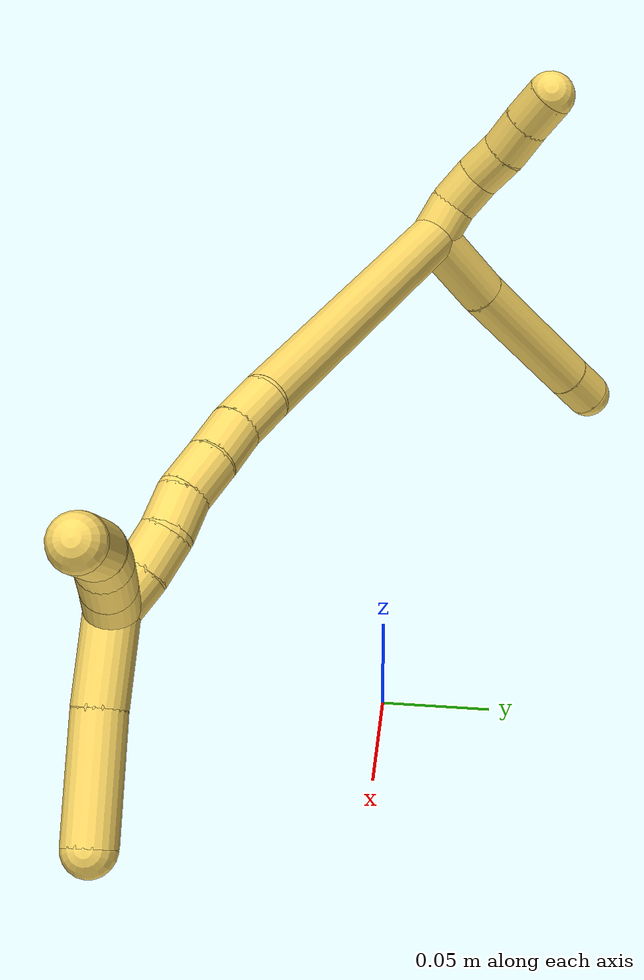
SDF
<sdf version="1.7">
 <world name="default">
  <model name="5">
   <static>0</static>
   <link name="5">
    <collision name="collision-cylinder-e_1_2_8">
     <pose>-0.000917 -0.016571 0.016247 0.795261 -0.039487 -0.016587</pose>
     <geometry><cylinder><radius>0.0125</radius><length>0.046451</length></cylinder></geometry>
     <surface>
      <friction><ode><mu>1.16</mu><mu2>1.16</mu2><slip1>0</slip1><slip2>0</slip2></ode></friction>
      <contact><ode><kp>1e+06</kp><kd>1</kd><max_vel>0</max_vel><min_depth>0.001</min_depth></ode></contact>
     </surface>
    </collision>
    <visual name="visual-cylinder-e_1_2_8">
     <pose>-0.000917 -0.016571 0.016247 0.795261 -0.039487 -0.016587</pose>
     <geometry><cylinder><radius>0.0125</radius><length>0.046451</length></cylinder></geometry>
     <material><ambient>1 0.858824 0.4 1</ambient></material>
    </visual>
    <collision name="collision-cylinder-e_2_8_9">
     <pose>-0.006207 -0.061881 0.061323 0.783852 -0.107034 -0.044273</pose>
     <geometry><cylinder><radius>0.0125</radius><length>0.08188</length></cylinder></geometry>
     <surface>
      <friction><ode><mu>1.16</mu><mu2>1.16</mu2><slip1>0</slip1><slip2>0</slip2></ode></friction>
      <contact><ode><kp>1e+06</kp><kd>1</kd><max_vel>0</max_vel><min_depth>0.001</min_depth></ode></contact>
     </surface>
    </collision>
    <visual name="visual-cylinder-e_2_8_9">
     <pose>-0.006207 -0.061881 0.061323 0.783852 -0.107034 -0.044273</pose>
     <geometry><cylinder><radius>0.0125</radius><length>0.08188</length></cylinder></geometry>
     <material><ambient>1 0.858824 0.4 1</ambient></material>
    </visual>
    <collision name="collision-cylinder-e_3_9_6">
     <pose>-0.011896 -0.097846 0.098115 0.736818 -0.121718 -0.047037</pose>
     <geometry><cylinder><radius>0.0125</radius><length>0.021669</length></cylinder></geometry>
     <surface>
      <friction><ode><mu>1.16</mu><mu2>1.16</mu2><slip1>0</slip1><slip2>0</slip2></ode></friction>
      <contact><ode><kp>1e+06</kp><kd>1</kd><max_vel>0</max_vel><min_depth>0.001</min_depth></ode></contact>
     </surface>
    </collision>
    <visual name="visual-cylinder-e_3_9_6">
     <pose>-0.011896 -0.097846 0.098115 0.736818 -0.121718 -0.047037</pose>
     <geometry><cylinder><radius>0.0125</radius><length>0.021669</length></cylinder></geometry>
     <material><ambient>1 0.858824 0.4 1</ambient></material>
    </visual>
    <collision name="collision-cylinder-e_1_2_10">
     <pose>-0.009677 0.001772 -0.001795 -2.36261 -1.31576 2.16502</pose>
     <geometry><cylinder><radius>0.0125</radius><length>0.02</length></cylinder></geometry>
     <surface>
      <friction><ode><mu>1.16</mu><mu2>1.16</mu2><slip1>0</slip1><slip2>0</slip2></ode></friction>
      <contact><ode><kp>1e+06</kp><kd>1</kd><max_vel>0</max_vel><min_depth>0.001</min_depth></ode></contact>
     </surface>
    </collision>
    <visual name="visual-cylinder-e_1_2_10">
     <pose>-0.009677 0.001772 -0.001795 -2.36261 -1.31576 2.16502</pose>
     <geometry><cylinder><radius>0.0125</radius><length>0.02</length></cylinder></geometry>
     <material><ambient>1 0.858824 0.4 1</ambient></material>
    </visual>
    <collision name="collision-cylinder-e_2_10_11">
     <pose>-0.02847 0.00289 -0.007647 2.98154 -1.14734 -2.89463</pose>
     <geometry><cylinder><radius>0.0125</radius><length>0.02</length></cylinder></geometry>
     <surface>
      <friction><ode><mu>1.16</mu><mu2>1.16</mu2><slip1>0</slip1><slip2>0</slip2></ode></friction>
      <contact><ode><kp>1e+06</kp><kd>1</kd><max_vel>0</max_vel><min_depth>0.001</min_depth></ode></contact>
     </surface>
    </collision>
    <visual name="visual-cylinder-e_2_10_11">
     <pose>-0.02847 0.00289 -0.007647 2.98154 -1.14734 -2.89463</pose>
     <geometry><cylinder><radius>0.0125</radius><length>0.02</length></cylinder></geometry>
     <material><ambient>1 0.858824 0.4 1</ambient></material>
    </visual>
    <collision name="collision-cylinder-e_3_11_12">
     <pose>-0.0455 0.000285 -0.017499 2.81702 -0.912981 -2.49798</pose>
     <geometry><cylinder><radius>0.0125</radius><length>0.02</length></cylinder></geometry>
     <surface>
      <friction><ode><mu>1.16</mu><mu2>1.16</mu2><slip1>0</slip1><slip2>0</slip2></ode></friction>
      <contact><ode><kp>1e+06</kp><kd>1</kd><max_vel>0</max_vel><min_depth>0.001</min_depth></ode></contact>
     </surface>
    </collision>
    <visual name="visual-cylinder-e_3_11_12">
     <pose>-0.0455 0.000285 -0.017499 2.81702 -0.912981 -2.49798</pose>
     <geometry><cylinder><radius>0.0125</radius><length>0.02</length></cylinder></geometry>
     <material><ambient>1 0.858824 0.4 1</ambient></material>
    </visual>
    <collision name="collision-cylinder-e_4_12_13">
     <pose>-0.061035 -0.002352 -0.02973 3.03514 -0.866731 -2.91232</pose>
     <geometry><cylinder><radius>0.0125</radius><length>0.02</length></cylinder></geometry>
     <surface>
      <friction><ode><mu>1.16</mu><mu2>1.16</mu2><slip1>0</slip1><slip2>0</slip2></ode></friction>
      <contact><ode><kp>1e+06</kp><kd>1</kd><max_vel>0</max_vel><min_depth>0.001</min_depth></ode></contact>
     </surface>
    </collision>
    <visual name="visual-cylinder-e_4_12_13">
     <pose>-0.061035 -0.002352 -0.02973 3.03514 -0.866731 -2.91232</pose>
     <geometry><cylinder><radius>0.0125</radius><length>0.02</length></cylinder></geometry>
     <material><ambient>1 0.858824 0.4 1</ambient></material>
    </visual>
    <collision name="collision-cylinder-e_5_13_5">
     <pose>-0.076144 -0.004249 -0.042685 2.95818 -0.845956 -2.73855</pose>
     <geometry><cylinder><radius>0.0125</radius><length>0.02</length></cylinder></geometry>
     <surface>
      <friction><ode><mu>1.16</mu><mu2>1.16</mu2><slip1>0</slip1><slip2>0</slip2></ode></friction>
      <contact><ode><kp>1e+06</kp><kd>1</kd><max_vel>0</max_vel><min_depth>0.001</min_depth></ode></contact>
     </surface>
    </collision>
    <visual name="visual-cylinder-e_5_13_5">
     <pose>-0.076144 -0.004249 -0.042685 2.95818 -0.845956 -2.73855</pose>
     <geometry><cylinder><radius>0.0125</radius><length>0.02</length></cylinder></geometry>
     <material><ambient>1 0.858824 0.4 1</ambient></material>
    </visual>
    <collision name="collision-cylinder-e_1_2_14">
     <pose>0.066803 -0.008686 -0.053138 2.97956 0.892403 2.80535</pose>
     <geometry><cylinder><radius>0.0125</radius><length>0.171601</length></cylinder></geometry>
     <surface>
      <friction><ode><mu>1.16</mu><mu2>1.16</mu2><slip1>0</slip1><slip2>0</slip2></ode></friction>
      <contact><ode><kp>1e+06</kp><kd>1</kd><max_vel>0</max_vel><min_depth>0.001</min_depth></ode></contact>
     </surface>
    </collision>
    <visual name="visual-cylinder-e_1_2_14">
     <pose>0.066803 -0.008686 -0.053138 2.97956 0.892403 2.80535</pose>
     <geometry><cylinder><radius>0.0125</radius><length>0.171601</length></cylinder></geometry>
     <material><ambient>1 0.858824 0.4 1</ambient></material>
    </visual>
    <collision name="collision-cylinder-e_2_14_15">
     <pose>0.143893 -0.018405 -0.111814 2.95724 1.06982 2.83208</pose>
     <geometry><cylinder><radius>0.0125</radius><length>0.023457</length></cylinder></geometry>
     <surface>
      <friction><ode><mu>1.16</mu><mu2>1.16</mu2><slip1>0</slip1><slip2>0</slip2></ode></friction>
      <contact><ode><kp>1e+06</kp><kd>1</kd><max_vel>0</max_vel><min_depth>0.001</min_depth></ode></contact>
     </surface>
    </collision>
    <visual name="visual-cylinder-e_2_14_15">
     <pose>0.143893 -0.018405 -0.111814 2.95724 1.06982 2.83208</pose>
     <geometry><cylinder><radius>0.0125</radius><length>0.023457</length></cylinder></geometry>
     <material><ambient>1 0.858824 0.4 1</ambient></material>
    </visual>
    <collision name="collision-cylinder-e_3_15_16">
     <pose>0.163524 -0.021741 -0.122769 2.73951 1.00859 2.43414</pose>
     <geometry><cylinder><radius>0.0125</radius><length>0.022088</length></cylinder></geometry>
     <surface>
      <friction><ode><mu>1.16</mu><mu2>1.16</mu2><slip1>0</slip1><slip2>0</slip2></ode></friction>
      <contact><ode><kp>1e+06</kp><kd>1</kd><max_vel>0</max_vel><min_depth>0.001</min_depth></ode></contact>
     </surface>
    </collision>
    <visual name="visual-cylinder-e_3_15_16">
     <pose>0.163524 -0.021741 -0.122769 2.73951 1.00859 2.43414</pose>
     <geometry><cylinder><radius>0.0125</radius><length>0.022088</length></cylinder></geometry>
     <material><ambient>1 0.858824 0.4 1</ambient></material>
    </visual>
    <collision name="collision-cylinder-e_4_16_17">
     <pose>0.182974 -0.02593 -0.132902 2.7613 1.1052 2.53654</pose>
     <geometry><cylinder><radius>0.0125</radius><length>0.02262</length></cylinder></geometry>
     <surface>
      <friction><ode><mu>1.16</mu><mu2>1.16</mu2><slip1>0</slip1><slip2>0</slip2></ode></friction>
      <contact><ode><kp>1e+06</kp><kd>1</kd><max_vel>0</max_vel><min_depth>0.001</min_depth></ode></contact>
     </surface>
    </collision>
    <visual name="visual-cylinder-e_4_16_17">
     <pose>0.182974 -0.02593 -0.132902 2.7613 1.1052 2.53654</pose>
     <geometry><cylinder><radius>0.0125</radius><length>0.02262</length></cylinder></geometry>
     <material><ambient>1 0.858824 0.4 1</ambient></material>
    </visual>
    <collision name="collision-cylinder-e_5_17_18">
     <pose>0.20177 -0.03162 -0.14088 2.27978 1.04756 1.79708</pose>
     <geometry><cylinder><radius>0.0125</radius><length>0.020064</length></cylinder></geometry>
     <surface>
      <friction><ode><mu>1.16</mu><mu2>1.16</mu2><slip1>0</slip1><slip2>0</slip2></ode></friction>
      <contact><ode><kp>1e+06</kp><kd>1</kd><max_vel>0</max_vel><min_depth>0.001</min_depth></ode></contact>
     </surface>
    </collision>
    <visual name="visual-cylinder-e_5_17_18">
     <pose>0.20177 -0.03162 -0.14088 2.27978 1.04756 1.79708</pose>
     <geometry><cylinder><radius>0.0125</radius><length>0.020064</length></cylinder></geometry>
     <material><ambient>1 0.858824 0.4 1</ambient></material>
    </visual>
    <collision name="collision-cylinder-e_6_18_19">
     <pose>0.220147 -0.037651 -0.14577 2.20137 1.29353 1.957</pose>
     <geometry><cylinder><radius>0.0125</radius><length>0.020143</length></cylinder></geometry>
     <surface>
      <friction><ode><mu>1.16</mu><mu2>1.16</mu2><slip1>0</slip1><slip2>0</slip2></ode></friction>
      <contact><ode><kp>1e+06</kp><kd>1</kd><max_vel>0</max_vel><min_depth>0.001</min_depth></ode></contact>
     </surface>
    </collision>
    <visual name="visual-cylinder-e_6_18_19">
     <pose>0.220147 -0.037651 -0.14577 2.20137 1.29353 1.957</pose>
     <geometry><cylinder><radius>0.0125</radius><length>0.020143</length></cylinder></geometry>
     <material><ambient>1 0.858824 0.4 1</ambient></material>
    </visual>
    <collision name="collision-cylinder-e_7_19_1">
     <pose>0.239589 -0.040977 -0.149372 2.63442 1.34295 2.51108</pose>
     <geometry><cylinder><radius>0.0125</radius><length>0.020026</length></cylinder></geometry>
     <surface>
      <friction><ode><mu>1.16</mu><mu2>1.16</mu2><slip1>0</slip1><slip2>0</slip2></ode></friction>
      <contact><ode><kp>1e+06</kp><kd>1</kd><max_vel>0</max_vel><min_depth>0.001</min_depth></ode></contact>
     </surface>
    </collision>
    <visual name="visual-cylinder-e_7_19_1">
     <pose>0.239589 -0.040977 -0.149372 2.63442 1.34295 2.51108</pose>
     <geometry><cylinder><radius>0.0125</radius><length>0.020026</length></cylinder></geometry>
     <material><ambient>1 0.858824 0.4 1</ambient></material>
    </visual>
    <collision name="collision-cylinder-e_1_1_20">
     <pose>0.245831 -0.041178 -0.16579 -3.07954 -0.238103 2.63389</pose>
     <geometry><cylinder><radius>0.0125</radius><length>0.029778</length></cylinder></geometry>
     <surface>
      <friction><ode><mu>1.16</mu><mu2>1.16</mu2><slip1>0</slip1><slip2>0</slip2></ode></friction>
      <contact><ode><kp>1e+06</kp><kd>1</kd><max_vel>0</max_vel><min_depth>0.001</min_depth></ode></contact>
     </surface>
    </collision>
    <visual name="visual-cylinder-e_1_1_20">
     <pose>0.245831 -0.041178 -0.16579 -3.07954 -0.238103 2.63389</pose>
     <geometry><cylinder><radius>0.0125</radius><length>0.029778</length></cylinder></geometry>
     <material><ambient>1 0.858824 0.4 1</ambient></material>
    </visual>
    <collision name="collision-cylinder-e_2_20_21">
     <pose>0.239464 -0.039434 -0.193074 -3.07573 -0.218344 2.55766</pose>
     <geometry><cylinder><radius>0.0125</radius><length>0.026366</length></cylinder></geometry>
     <surface>
      <friction><ode><mu>1.16</mu><mu2>1.16</mu2><slip1>0</slip1><slip2>0</slip2></ode></friction>
      <contact><ode><kp>1e+06</kp><kd>1</kd><max_vel>0</max_vel><min_depth>0.001</min_depth></ode></contact>
     </surface>
    </collision>
    <visual name="visual-cylinder-e_2_20_21">
     <pose>0.239464 -0.039434 -0.193074 -3.07573 -0.218344 2.55766</pose>
     <geometry><cylinder><radius>0.0125</radius><length>0.026366</length></cylinder></geometry>
     <material><ambient>1 0.858824 0.4 1</ambient></material>
    </visual>
    <collision name="collision-cylinder-e_3_21_22">
     <pose>0.235386 -0.038145 -0.216282 -3.09902 -0.117296 2.44592</pose>
     <geometry><cylinder><radius>0.0125</radius><length>0.020895</length></cylinder></geometry>
     <surface>
      <friction><ode><mu>1.16</mu><mu2>1.16</mu2><slip1>0</slip1><slip2>0</slip2></ode></friction>
      <contact><ode><kp>1e+06</kp><kd>1</kd><max_vel>0</max_vel><min_depth>0.001</min_depth></ode></contact>
     </surface>
    </collision>
    <visual name="visual-cylinder-e_3_21_22">
     <pose>0.235386 -0.038145 -0.216282 -3.09902 -0.117296 2.44592</pose>
     <geometry><cylinder><radius>0.0125</radius><length>0.020895</length></cylinder></geometry>
     <material><ambient>1 0.858824 0.4 1</ambient></material>
    </visual>
    <collision name="collision-cylinder-e_4_22_4">
     <pose>0.235236 -0.036877 -0.238048 -3.06923 0.093605 -1.82563</pose>
     <geometry><cylinder><radius>0.0125</radius><length>0.022961</length></cylinder></geometry>
     <surface>
      <friction><ode><mu>1.16</mu><mu2>1.16</mu2><slip1>0</slip1><slip2>0</slip2></ode></friction>
      <contact><ode><kp>1e+06</kp><kd>1</kd><max_vel>0</max_vel><min_depth>0.001</min_depth></ode></contact>
     </surface>
    </collision>
    <visual name="visual-cylinder-e_4_22_4">
     <pose>0.235236 -0.036877 -0.238048 -3.06923 0.093605 -1.82563</pose>
     <geometry><cylinder><radius>0.0125</radius><length>0.022961</length></cylinder></geometry>
     <material><ambient>1 0.858824 0.4 1</ambient></material>
    </visual>
    <collision name="collision-cylinder-e_1_1_23">
     <pose>0.266429 -0.054857 -0.151757 1.60272 0.928251 0.954059</pose>
     <geometry><cylinder><radius>0.0125</radius><length>0.042684</length></cylinder></geometry>
     <surface>
      <friction><ode><mu>1.16</mu><mu2>1.16</mu2><slip1>0</slip1><slip2>0</slip2></ode></friction>
      <contact><ode><kp>1e+06</kp><kd>1</kd><max_vel>0</max_vel><min_depth>0.001</min_depth></ode></contact>
     </surface>
    </collision>
    <visual name="visual-cylinder-e_1_1_23">
     <pose>0.266429 -0.054857 -0.151757 1.60272 0.928251 0.954059</pose>
     <geometry><cylinder><radius>0.0125</radius><length>0.042684</length></cylinder></geometry>
     <material><ambient>1 0.858824 0.4 1</ambient></material>
    </visual>
    <collision name="collision-cylinder-e_2_23_3">
     <pose>0.305509 -0.086006 -0.152624 1.59574 0.874922 0.894219</pose>
     <geometry><cylinder><radius>0.0125</radius><length>0.057316</length></cylinder></geometry>
     <surface>
      <friction><ode><mu>1.16</mu><mu2>1.16</mu2><slip1>0</slip1><slip2>0</slip2></ode></friction>
      <contact><ode><kp>1e+06</kp><kd>1</kd><max_vel>0</max_vel><min_depth>0.001</min_depth></ode></contact>
     </surface>
    </collision>
    <visual name="visual-cylinder-e_2_23_3">
     <pose>0.305509 -0.086006 -0.152624 1.59574 0.874922 0.894219</pose>
     <geometry><cylinder><radius>0.0125</radius><length>0.057316</length></cylinder></geometry>
     <material><ambient>1 0.858824 0.4 1</ambient></material>
    </visual>
    <collision name="collision-sphere-3">
     <pose>0.327504 -0.104371 -0.153082 0 -0 0</pose>
     <geometry><sphere><radius>0.0125</radius></sphere></geometry>
     <surface>
      <friction><ode><mu>1.16</mu><mu2>1.16</mu2><slip1>0</slip1><slip2>0</slip2></ode></friction>
      <contact><ode><kp>1e+06</kp><kd>1</kd><max_vel>0</max_vel><min_depth>0.001</min_depth></ode></contact>
     </surface>
    </collision>
    <visual name="visual-sphere-3">
     <pose>0.327504 -0.104371 -0.153082 0 -0 0</pose>
     <geometry><sphere><radius>0.0125</radius></sphere></geometry>
     <material><ambient>1 0.858824 0.4 1</ambient></material>
    </visual>
    <collision name="collision-sphere-23">
     <pose>0.283514 -0.06764 -0.152166 0 -0 0</pose>
     <geometry><sphere><radius>0.0125</radius></sphere></geometry>
     <surface>
      <friction><ode><mu>1.16</mu><mu2>1.16</mu2><slip1>0</slip1><slip2>0</slip2></ode></friction>
      <contact><ode><kp>1e+06</kp><kd>1</kd><max_vel>0</max_vel><min_depth>0.001</min_depth></ode></contact>
     </surface>
    </collision>
    <visual name="visual-sphere-23">
     <pose>0.283514 -0.06764 -0.152166 0 -0 0</pose>
     <geometry><sphere><radius>0.0125</radius></sphere></geometry>
     <material><ambient>1 0.858824 0.4 1</ambient></material>
    </visual>
    <collision name="collision-sphere-4">
     <pose>0.236309 -0.036051 -0.249449 0 -0 0</pose>
     <geometry><sphere><radius>0.0125</radius></sphere></geometry>
     <surface>
      <friction><ode><mu>1.16</mu><mu2>1.16</mu2><slip1>0</slip1><slip2>0</slip2></ode></friction>
      <contact><ode><kp>1e+06</kp><kd>1</kd><max_vel>0</max_vel><min_depth>0.001</min_depth></ode></contact>
     </surface>
    </collision>
    <visual name="visual-sphere-4">
     <pose>0.236309 -0.036051 -0.249449 0 -0 0</pose>
     <geometry><sphere><radius>0.0125</radius></sphere></geometry>
     <material><ambient>1 0.858824 0.4 1</ambient></material>
    </visual>
    <collision name="collision-sphere-22">
     <pose>0.234163 -0.037704 -0.226648 0 -0 0</pose>
     <geometry><sphere><radius>0.0125</radius></sphere></geometry>
     <surface>
      <friction><ode><mu>1.16</mu><mu2>1.16</mu2><slip1>0</slip1><slip2>0</slip2></ode></friction>
      <contact><ode><kp>1e+06</kp><kd>1</kd><max_vel>0</max_vel><min_depth>0.001</min_depth></ode></contact>
     </surface>
    </collision>
    <visual name="visual-sphere-22">
     <pose>0.234163 -0.037704 -0.226648 0 -0 0</pose>
     <geometry><sphere><radius>0.0125</radius></sphere></geometry>
     <material><ambient>1 0.858824 0.4 1</ambient></material>
    </visual>
    <collision name="collision-sphere-21">
     <pose>0.236608 -0.038587 -0.205916 0 -0 0</pose>
     <geometry><sphere><radius>0.0125</radius></sphere></geometry>
     <surface>
      <friction><ode><mu>1.16</mu><mu2>1.16</mu2><slip1>0</slip1><slip2>0</slip2></ode></friction>
      <contact><ode><kp>1e+06</kp><kd>1</kd><max_vel>0</max_vel><min_depth>0.001</min_depth></ode></contact>
     </surface>
    </collision>
    <visual name="visual-sphere-21">
     <pose>0.236608 -0.038587 -0.205916 0 -0 0</pose>
     <geometry><sphere><radius>0.0125</radius></sphere></geometry>
     <material><ambient>1 0.858824 0.4 1</ambient></material>
    </visual>
    <collision name="collision-sphere-20">
     <pose>0.242319 -0.040281 -0.180231 0 -0 0</pose>
     <geometry><sphere><radius>0.0125</radius></sphere></geometry>
     <surface>
      <friction><ode><mu>1.16</mu><mu2>1.16</mu2><slip1>0</slip1><slip2>0</slip2></ode></friction>
      <contact><ode><kp>1e+06</kp><kd>1</kd><max_vel>0</max_vel><min_depth>0.001</min_depth></ode></contact>
     </surface>
    </collision>
    <visual name="visual-sphere-20">
     <pose>0.242319 -0.040281 -0.180231 0 -0 0</pose>
     <geometry><sphere><radius>0.0125</radius></sphere></geometry>
     <material><ambient>1 0.858824 0.4 1</ambient></material>
    </visual>
    <collision name="collision-sphere-11">
     <pose>-0.037587 0.002235 -0.011704 0 -0 0</pose>
     <geometry><sphere><radius>0.0125</radius></sphere></geometry>
     <surface>
      <friction><ode><mu>1.16</mu><mu2>1.16</mu2><slip1>0</slip1><slip2>0</slip2></ode></friction>
      <contact><ode><kp>1e+06</kp><kd>1</kd><max_vel>0</max_vel><min_depth>0.001</min_depth></ode></contact>
     </surface>
    </collision>
    <visual name="visual-sphere-11">
     <pose>-0.037587 0.002235 -0.011704 0 -0 0</pose>
     <geometry><sphere><radius>0.0125</radius></sphere></geometry>
     <material><ambient>1 0.858824 0.4 1</ambient></material>
    </visual>
    <collision name="collision-sphere-10">
     <pose>-0.019353 0.003545 -0.003591 0 -0 0</pose>
     <geometry><sphere><radius>0.0125</radius></sphere></geometry>
     <surface>
      <friction><ode><mu>1.16</mu><mu2>1.16</mu2><slip1>0</slip1><slip2>0</slip2></ode></friction>
      <contact><ode><kp>1e+06</kp><kd>1</kd><max_vel>0</max_vel><min_depth>0.001</min_depth></ode></contact>
     </surface>
    </collision>
    <visual name="visual-sphere-10">
     <pose>-0.019353 0.003545 -0.003591 0 -0 0</pose>
     <geometry><sphere><radius>0.0125</radius></sphere></geometry>
     <material><ambient>1 0.858824 0.4 1</ambient></material>
    </visual>
    <collision name="collision-sphere-6">
     <pose>-0.013212 -0.105072 0.10608 0 -0 0</pose>
     <geometry><sphere><radius>0.0125</radius></sphere></geometry>
     <surface>
      <friction><ode><mu>1.16</mu><mu2>1.16</mu2><slip1>0</slip1><slip2>0</slip2></ode></friction>
      <contact><ode><kp>1e+06</kp><kd>1</kd><max_vel>0</max_vel><min_depth>0.001</min_depth></ode></contact>
     </surface>
    </collision>
    <visual name="visual-sphere-6">
     <pose>-0.013212 -0.105072 0.10608 0 -0 0</pose>
     <geometry><sphere><radius>0.0125</radius></sphere></geometry>
     <material><ambient>1 0.858824 0.4 1</ambient></material>
    </visual>
    <collision name="collision-sphere-9">
     <pose>-0.010581 -0.09062 0.09015 0 -0 0</pose>
     <geometry><sphere><radius>0.0125</radius></sphere></geometry>
     <surface>
      <friction><ode><mu>1.16</mu><mu2>1.16</mu2><slip1>0</slip1><slip2>0</slip2></ode></friction>
      <contact><ode><kp>1e+06</kp><kd>1</kd><max_vel>0</max_vel><min_depth>0.001</min_depth></ode></contact>
     </surface>
    </collision>
    <visual name="visual-sphere-9">
     <pose>-0.010581 -0.09062 0.09015 0 -0 0</pose>
     <geometry><sphere><radius>0.0125</radius></sphere></geometry>
     <material><ambient>1 0.858824 0.4 1</ambient></material>
    </visual>
    <collision name="collision-sphere-2">
     <geometry><sphere><radius>0.0125</radius></sphere></geometry>
     <surface>
      <friction><ode><mu>1.16</mu><mu2>1.16</mu2><slip1>0</slip1><slip2>0</slip2></ode></friction>
      <contact><ode><kp>1e+06</kp><kd>1</kd><max_vel>0</max_vel><min_depth>0.001</min_depth></ode></contact>
     </surface>
    </collision>
    <visual name="visual-sphere-2">
     <geometry><sphere><radius>0.0125</radius></sphere></geometry>
     <material><ambient>1 0.858824 0.4 1</ambient></material>
    </visual>
    <collision name="collision-sphere-19">
     <pose>0.229834 -0.039878 -0.147395 0 -0 0</pose>
     <geometry><sphere><radius>0.0125</radius></sphere></geometry>
     <surface>
      <friction><ode><mu>1.16</mu><mu2>1.16</mu2><slip1>0</slip1><slip2>0</slip2></ode></friction>
      <contact><ode><kp>1e+06</kp><kd>1</kd><max_vel>0</max_vel><min_depth>0.001</min_depth></ode></contact>
     </surface>
    </collision>
    <visual name="visual-sphere-19">
     <pose>0.229834 -0.039878 -0.147395 0 -0 0</pose>
     <geometry><sphere><radius>0.0125</radius></sphere></geometry>
     <material><ambient>1 0.858824 0.4 1</ambient></material>
    </visual>
    <collision name="collision-sphere-8">
     <pose>-0.001834 -0.033142 0.032495 0 -0 0</pose>
     <geometry><sphere><radius>0.0125</radius></sphere></geometry>
     <surface>
      <friction><ode><mu>1.16</mu><mu2>1.16</mu2><slip1>0</slip1><slip2>0</slip2></ode></friction>
      <contact><ode><kp>1e+06</kp><kd>1</kd><max_vel>0</max_vel><min_depth>0.001</min_depth></ode></contact>
     </surface>
    </collision>
    <visual name="visual-sphere-8">
     <pose>-0.001834 -0.033142 0.032495 0 -0 0</pose>
     <geometry><sphere><radius>0.0125</radius></sphere></geometry>
     <material><ambient>1 0.858824 0.4 1</ambient></material>
    </visual>
    <collision name="collision-sphere-12">
     <pose>-0.053413 -0.001664 -0.023293 0 -0 0</pose>
     <geometry><sphere><radius>0.0125</radius></sphere></geometry>
     <surface>
      <friction><ode><mu>1.16</mu><mu2>1.16</mu2><slip1>0</slip1><slip2>0</slip2></ode></friction>
      <contact><ode><kp>1e+06</kp><kd>1</kd><max_vel>0</max_vel><min_depth>0.001</min_depth></ode></contact>
     </surface>
    </collision>
    <visual name="visual-sphere-12">
     <pose>-0.053413 -0.001664 -0.023293 0 -0 0</pose>
     <geometry><sphere><radius>0.0125</radius></sphere></geometry>
     <material><ambient>1 0.858824 0.4 1</ambient></material>
    </visual>
    <collision name="collision-sphere-13">
     <pose>-0.068658 -0.00304 -0.036166 0 -0 0</pose>
     <geometry><sphere><radius>0.0125</radius></sphere></geometry>
     <surface>
      <friction><ode><mu>1.16</mu><mu2>1.16</mu2><slip1>0</slip1><slip2>0</slip2></ode></friction>
      <contact><ode><kp>1e+06</kp><kd>1</kd><max_vel>0</max_vel><min_depth>0.001</min_depth></ode></contact>
     </surface>
    </collision>
    <visual name="visual-sphere-13">
     <pose>-0.068658 -0.00304 -0.036166 0 -0 0</pose>
     <geometry><sphere><radius>0.0125</radius></sphere></geometry>
     <material><ambient>1 0.858824 0.4 1</ambient></material>
    </visual>
    <collision name="collision-sphere-5">
     <pose>-0.08363 -0.005458 -0.049204 0 -0 0</pose>
     <geometry><sphere><radius>0.0125</radius></sphere></geometry>
     <surface>
      <friction><ode><mu>1.16</mu><mu2>1.16</mu2><slip1>0</slip1><slip2>0</slip2></ode></friction>
      <contact><ode><kp>1e+06</kp><kd>1</kd><max_vel>0</max_vel><min_depth>0.001</min_depth></ode></contact>
     </surface>
    </collision>
    <visual name="visual-sphere-5">
     <pose>-0.08363 -0.005458 -0.049204 0 -0 0</pose>
     <geometry><sphere><radius>0.0125</radius></sphere></geometry>
     <material><ambient>1 0.858824 0.4 1</ambient></material>
    </visual>
    <collision name="collision-sphere-14">
     <pose>0.133605 -0.017372 -0.106276 0 -0 0</pose>
     <geometry><sphere><radius>0.0125</radius></sphere></geometry>
     <surface>
      <friction><ode><mu>1.16</mu><mu2>1.16</mu2><slip1>0</slip1><slip2>0</slip2></ode></friction>
      <contact><ode><kp>1e+06</kp><kd>1</kd><max_vel>0</max_vel><min_depth>0.001</min_depth></ode></contact>
     </surface>
    </collision>
    <visual name="visual-sphere-14">
     <pose>0.133605 -0.017372 -0.106276 0 -0 0</pose>
     <geometry><sphere><radius>0.0125</radius></sphere></geometry>
     <material><ambient>1 0.858824 0.4 1</ambient></material>
    </visual>
    <collision name="collision-sphere-15">
     <pose>0.15418 -0.019438 -0.117352 0 -0 0</pose>
     <geometry><sphere><radius>0.0125</radius></sphere></geometry>
     <surface>
      <friction><ode><mu>1.16</mu><mu2>1.16</mu2><slip1>0</slip1><slip2>0</slip2></ode></friction>
      <contact><ode><kp>1e+06</kp><kd>1</kd><max_vel>0</max_vel><min_depth>0.001</min_depth></ode></contact>
     </surface>
    </collision>
    <visual name="visual-sphere-15">
     <pose>0.15418 -0.019438 -0.117352 0 -0 0</pose>
     <geometry><sphere><radius>0.0125</radius></sphere></geometry>
     <material><ambient>1 0.858824 0.4 1</ambient></material>
    </visual>
    <collision name="collision-sphere-16">
     <pose>0.172868 -0.024045 -0.128187 0 -0 0</pose>
     <geometry><sphere><radius>0.0125</radius></sphere></geometry>
     <surface>
      <friction><ode><mu>1.16</mu><mu2>1.16</mu2><slip1>0</slip1><slip2>0</slip2></ode></friction>
      <contact><ode><kp>1e+06</kp><kd>1</kd><max_vel>0</max_vel><min_depth>0.001</min_depth></ode></contact>
     </surface>
    </collision>
    <visual name="visual-sphere-16">
     <pose>0.172868 -0.024045 -0.128187 0 -0 0</pose>
     <geometry><sphere><radius>0.0125</radius></sphere></geometry>
     <material><ambient>1 0.858824 0.4 1</ambient></material>
    </visual>
    <collision name="collision-sphere-17">
     <pose>0.193081 -0.027815 -0.137617 0 -0 0</pose>
     <geometry><sphere><radius>0.0125</radius></sphere></geometry>
     <surface>
      <friction><ode><mu>1.16</mu><mu2>1.16</mu2><slip1>0</slip1><slip2>0</slip2></ode></friction>
      <contact><ode><kp>1e+06</kp><kd>1</kd><max_vel>0</max_vel><min_depth>0.001</min_depth></ode></contact>
     </surface>
    </collision>
    <visual name="visual-sphere-17">
     <pose>0.193081 -0.027815 -0.137617 0 -0 0</pose>
     <geometry><sphere><radius>0.0125</radius></sphere></geometry>
     <material><ambient>1 0.858824 0.4 1</ambient></material>
    </visual>
    <collision name="collision-sphere-18">
     <pose>0.21046 -0.035425 -0.144144 0 -0 0</pose>
     <geometry><sphere><radius>0.0125</radius></sphere></geometry>
     <surface>
      <friction><ode><mu>1.16</mu><mu2>1.16</mu2><slip1>0</slip1><slip2>0</slip2></ode></friction>
      <contact><ode><kp>1e+06</kp><kd>1</kd><max_vel>0</max_vel><min_depth>0.001</min_depth></ode></contact>
     </surface>
    </collision>
    <visual name="visual-sphere-18">
     <pose>0.21046 -0.035425 -0.144144 0 -0 0</pose>
     <geometry><sphere><radius>0.0125</radius></sphere></geometry>
     <material><ambient>1 0.858824 0.4 1</ambient></material>
    </visual>
    <collision name="collision-sphere-1">
     <pose>0.249343 -0.042075 -0.151349 0 -0 0</pose>
     <geometry><sphere><radius>0.0125</radius></sphere></geometry>
     <surface>
      <friction><ode><mu>1.16</mu><mu2>1.16</mu2><slip1>0</slip1><slip2>0</slip2></ode></friction>
      <contact><ode><kp>1e+06</kp><kd>1</kd><max_vel>0</max_vel><min_depth>0.001</min_depth></ode></contact>
     </surface>
    </collision>
    <visual name="visual-sphere-1">
     <pose>0.249343 -0.042075 -0.151349 0 -0 0</pose>
     <geometry><sphere><radius>0.0125</radius></sphere></geometry>
     <material><ambient>1 0.858824 0.4 1</ambient></material>
    </visual>
    <inertial>
     <pose>0.111309 -0.032497 -0.074049 0 -0 0</pose>
     <mass>0.75</mass>
     <inertia>
      <ixx>-7.6e-05</ixx>
      <ixy>0</ixy>
      <ixz>0</ixz>
      <iyy>0.000585</iyy>
      <iyz>0</iyz>
      <izz>-0.00026</izz>
     </inertia>
    </inertial>
   </link>
   <pose>-0.216585 0.006996 0.128588 2.62391 0.539419 -0.806107</pose>
  </model>
 </world>
</sdf>
